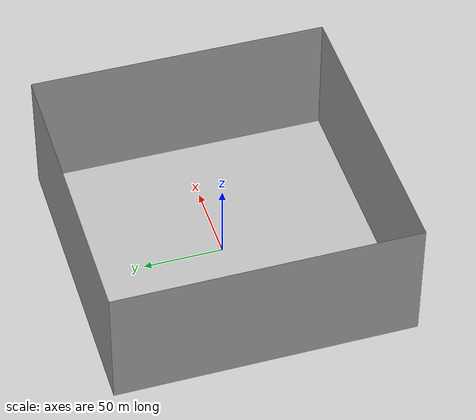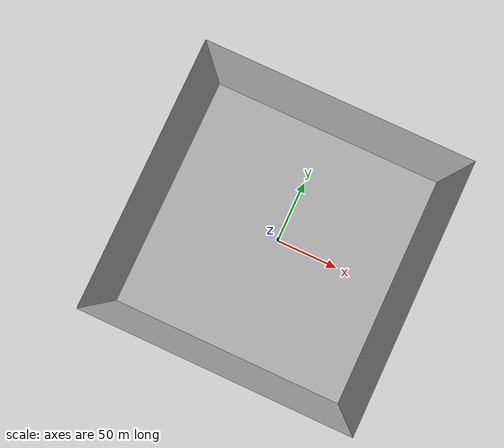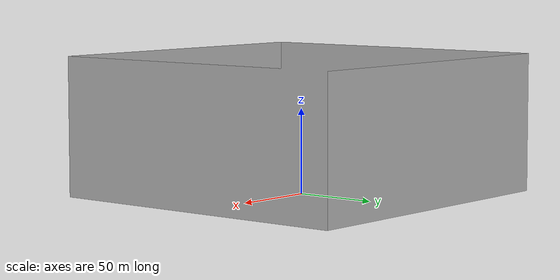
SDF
<?xml version="1.0" ?>
<sdf version="1.5">
  <model name="military">
    <link name="link">

    <collision name="bottom">
        <pose>0 0 0.01 0 0 1.57</pose>
        <geometry>
          <box>
            <size>0.5 0.35 0.02</size>
          </box>
        </geometry>
      </collision>

      <collision name="person">
        <pose>0 0 0.02 0 0 1.57</pose>
        <geometry>
          <mesh>
            <uri>model://military/meshes/Soldier.dae</uri>
          </mesh>
        </geometry>
      </collision>

      <visual name="visual">
        <pose>0 0 0.02 0 0 1.57</pose>
        <geometry>
          <mesh>
            <uri>model://military/meshes/Soldier.dae</uri>
            <scale>0.8 0.8 0.8 </scale>
          </mesh>
        </geometry>
      </visual>
    </link>
  </model>
</sdf>
